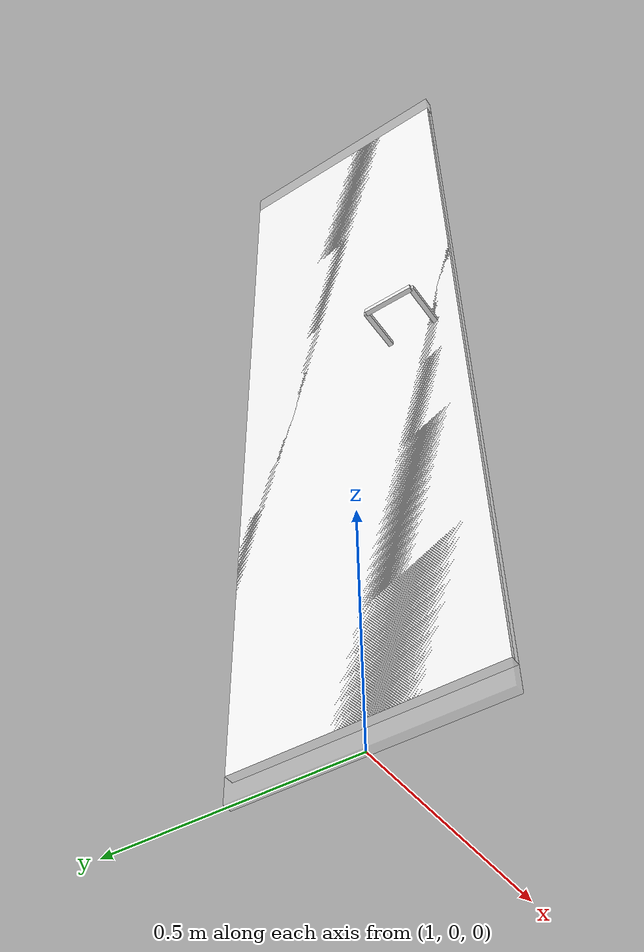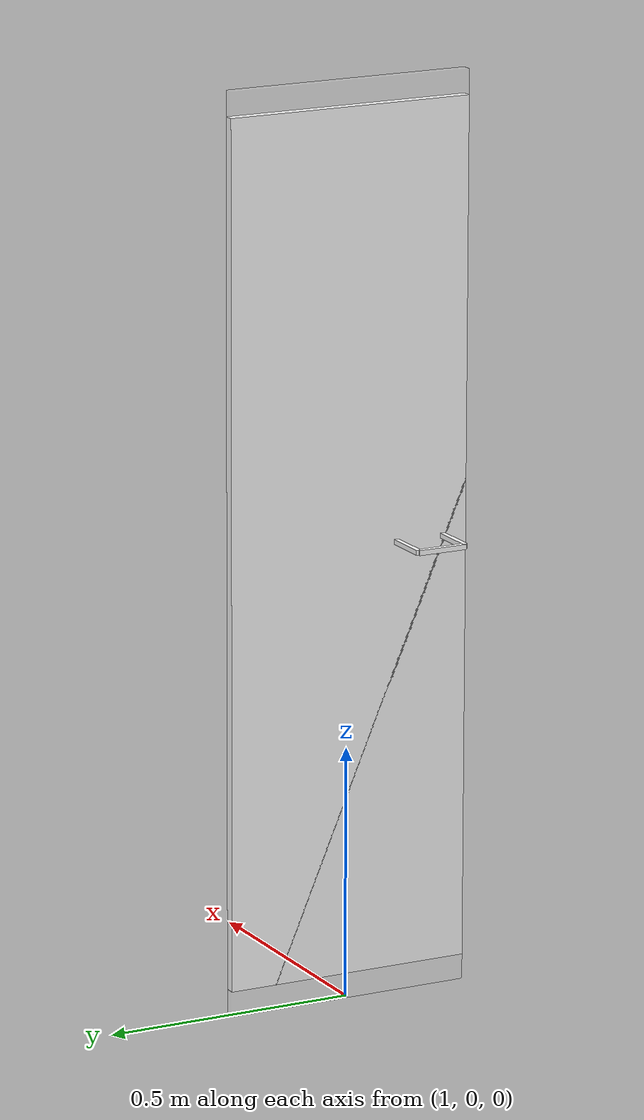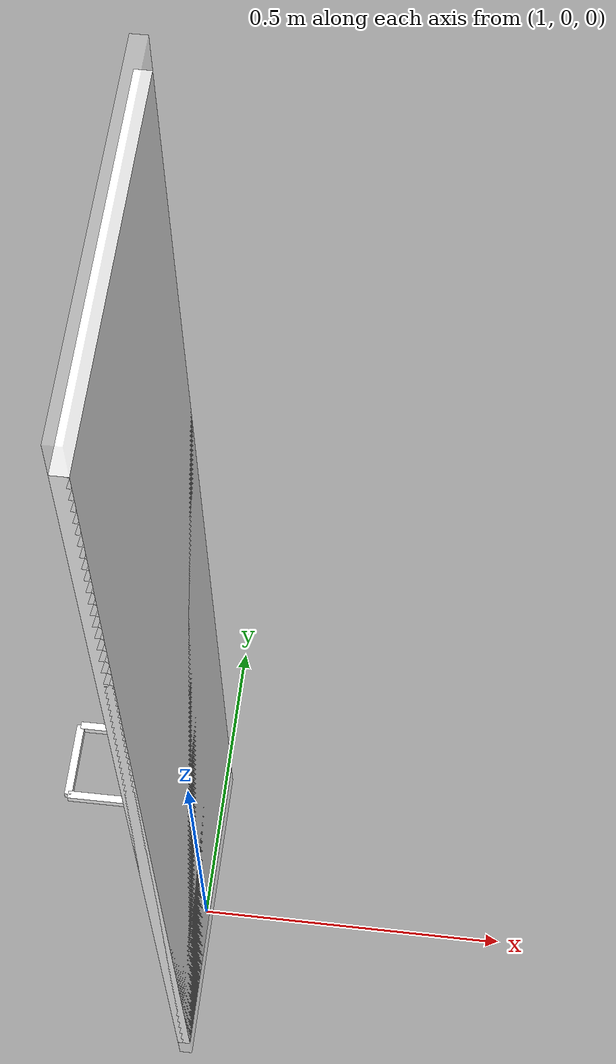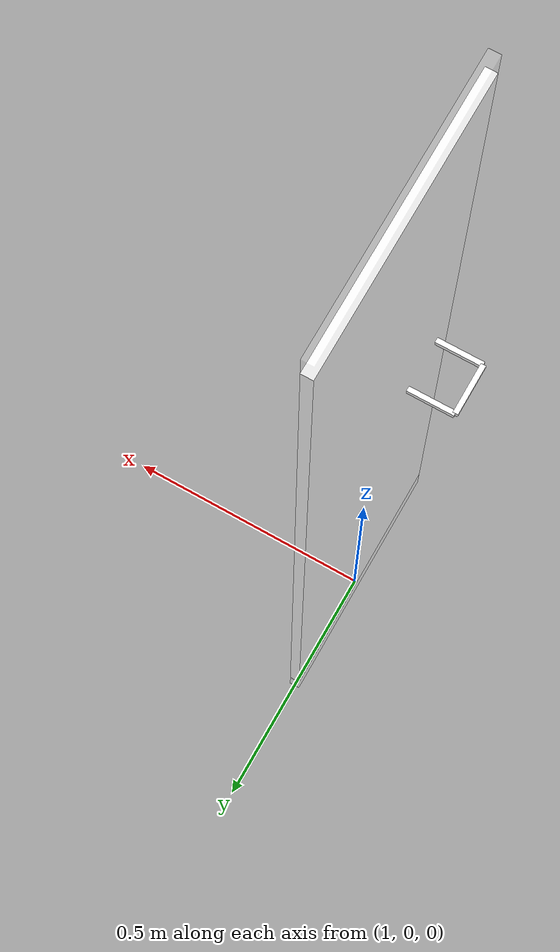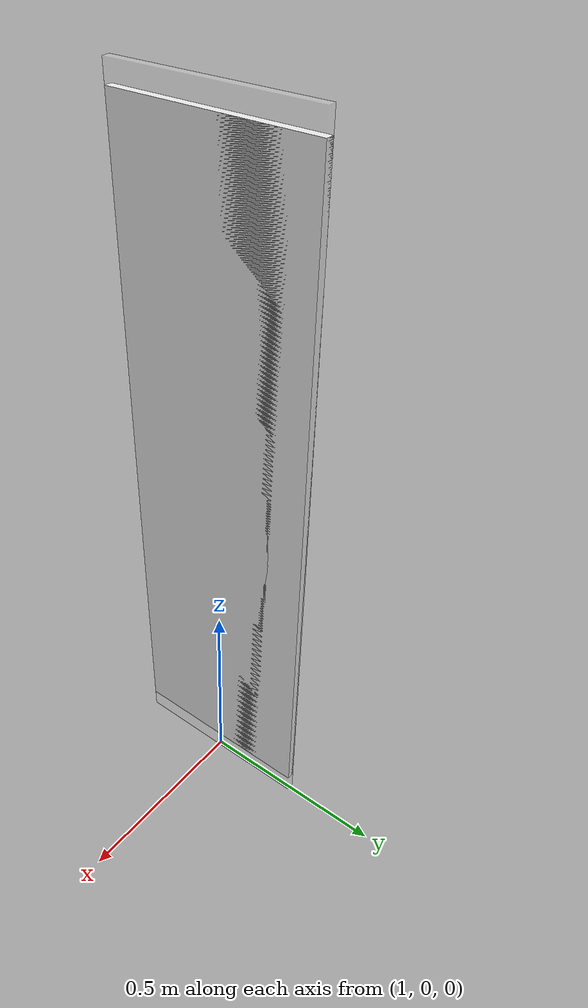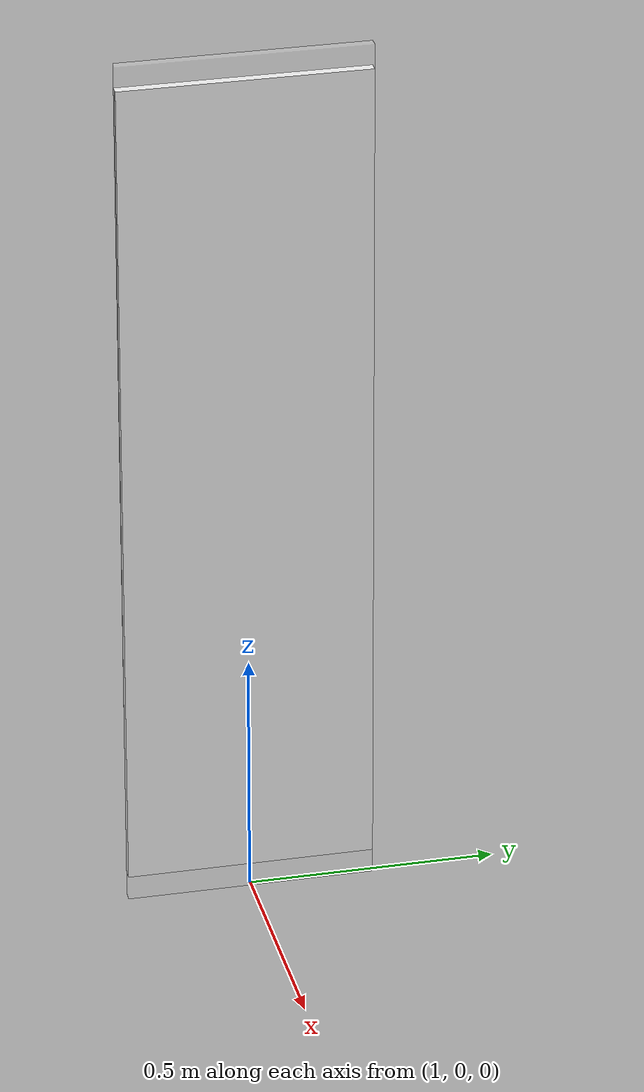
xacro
<?xml version="1.0"?>
<robot xmlns:xacro="http://www.ros.org/wiki/xacro" name="cube">

    <xacro:property name="mass_cube" value="0.5"/>
    <xacro:property name="door_handle_distance" value="-0.1"/>

    <link name="world"/>

    <joint name="world_wall" type="fixed">
        <parent link="world"/>
        <child link="wall"/>
        <origin rpy="0 0 0" xyz="1.0 0.0 0.9"/>
    </joint>

    <link name="wall">
        <visual>
            <origin rpy="0 0 0" xyz="0 0 0"/>
            <geometry>
                <box size="0.02 0.5 1.8"/>
            </geometry>
            <material name="">
                <color rgba="1 1 1 0.2"/>
            </material>
        </visual>
    </link>

    <joint name="articulation_joint" type="revolute">
        <parent link="wall"/>
        <child link="hinge"/>
        <origin rpy="0 0 0" xyz="0 0.25 0.0"/>
        <axis xyz="0 0 1"/>
        <limit effort="100.0" velocity="1.5" lower="-2" upper="0.0"/>
        <dynamics damping="4.0" friction="1.0"/>
    </joint>

    <link name="hinge"/>

    <joint name="hinge_door" type="fixed">
        <parent link="hinge"/>
        <child link="door"/>
        <origin rpy="0 0 0" xyz="0 -0.25 0.0"/>
    </joint>

    <link name="door">
        <inertial>
            <mass value="2.0"/>
            <origin rpy="0 0 0" xyz="0 0 0"/>
            <inertia ixx="0.12" ixy="0" ixz="0" iyy="0.14" iyz="0" izz="0.18"/>
        </inertial>
        <collision>
            <origin rpy="0 0 0" xyz="0 0 0.0"/>
            <geometry>
                <box size="0.02 0.5 1.7"/>
            </geometry>
        </collision>
        <visual>
            <origin rpy="0 0 0" xyz="0 0 0"/>
            <geometry>
                <box size="0.02 0.5 1.7"/>
            </geometry>
            <material name="">
                <color rgba="1 1 1 1"/>
            </material>
        </visual>
    </link>

    <joint name="door_handle" type="fixed">
        <parent link="door"/>
        <child link="handle"/>
        <origin rpy="0 0 0" xyz="${door_handle_distance} -0.15 0.0"/>
    </joint>

    <link name="handle">
        <collision>
            <origin rpy="0 0 0" xyz="0 0 0.0"/>
            <geometry>
                <box size="0.01 0.1 0.01"/>
            </geometry>
            <material name="">
                <contact name="rubber"/>
            </material>
        </collision>
        <visual>
            <origin rpy="0 0 0" xyz="0 0 0"/>
            <geometry>
                <box size="0.01 0.1 0.01"/>
            </geometry>
            <material name="">
                <color rgba="1 1 1 1"/>
            </material>
        </visual>
    </link>

    <joint name="handle_ref" type="fixed">
        <parent link="handle"/>
        <child link="handle_ref"/>
        <origin rpy="0 0 0" xyz="${-door_handle_distance/2} 0.0 0.0"/>
    </joint>

    <link name="handle_ref" />

    <joint name="handle_left" type="fixed">
        <parent link="handle"/>
        <child link="left"/>
        <origin rpy="0 0 0" xyz="0.05 0.05 0.0"/>
    </joint>

    <link name="left">
        <collision>
            <origin rpy="0 0 0" xyz="0 0 0.0"/>
            <geometry>
                <box size="0.1 0.01 0.01"/>
            </geometry>
            <material name="">
                <contact name="rubber"/>
            </material>
        </collision>
        <visual>
            <origin rpy="0 0 0" xyz="0 0 0"/>
            <geometry>
                <box size="0.1 0.01 0.01"/>
            </geometry>
            <material name="">
                <color rgba="1 1 1 1"/>
            </material>
        </visual>
    </link>

    <joint name="handle_right" type="fixed">
        <parent link="handle"/>
        <child link="right"/>
        <origin rpy="0 0 0" xyz="0.05 -0.05 0.0"/>
    </joint>

    <link name="right">
        <collision>
            <origin rpy="0 0 0" xyz="0 0 0.0"/>
            <geometry>
                <box size="0.1 0.01 0.01"/>
            </geometry>
            <material name="">
                <contact name="rubber"/>
            </material>
        </collision>
        <visual>
            <origin rpy="0 0 0" xyz="0 0 0"/>
            <geometry>
                <box size="0.1 0.01 0.01"/>
            </geometry>
            <material name="">
                <color rgba="1 1 1 1"/>
            </material>
        </visual>
    </link>

</robot>
